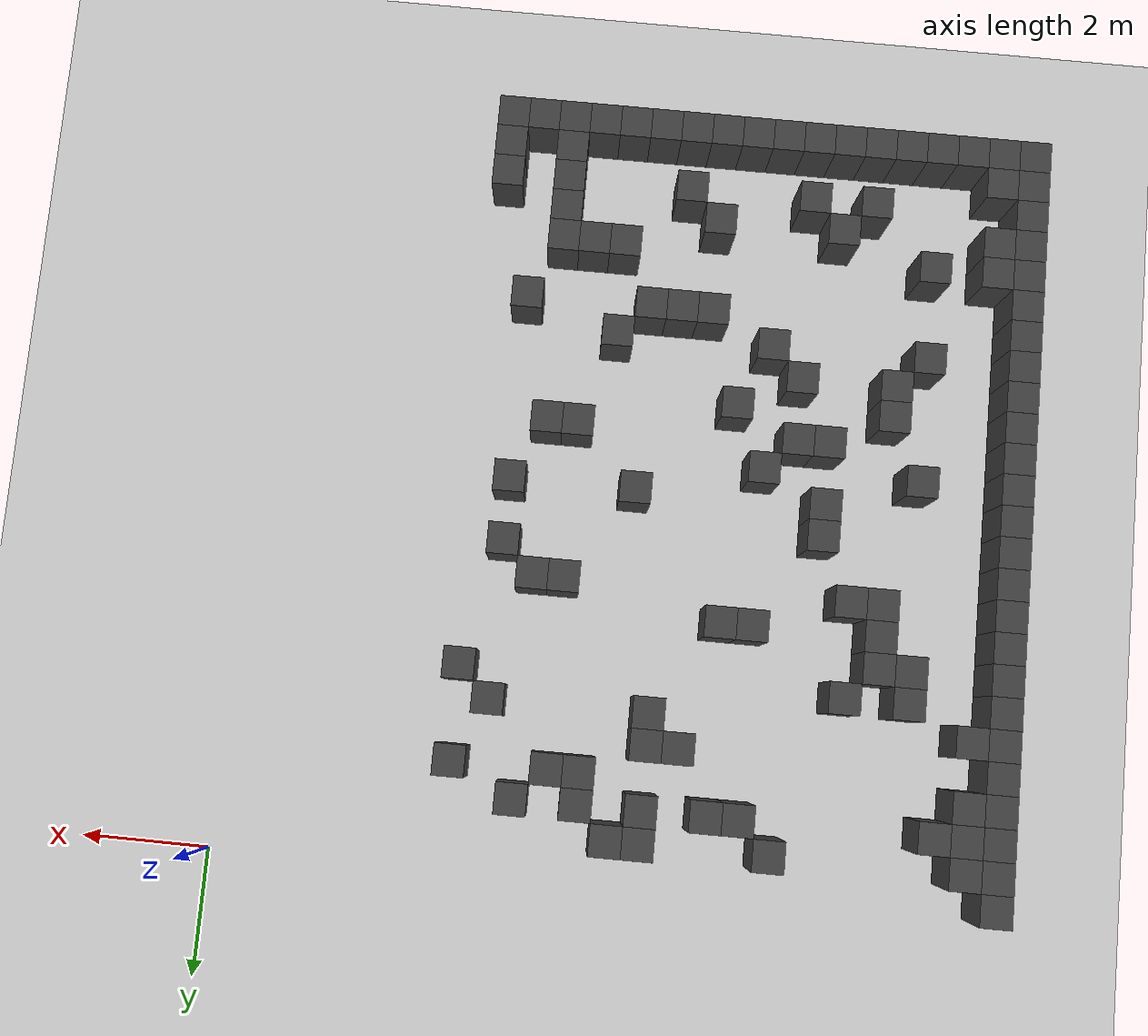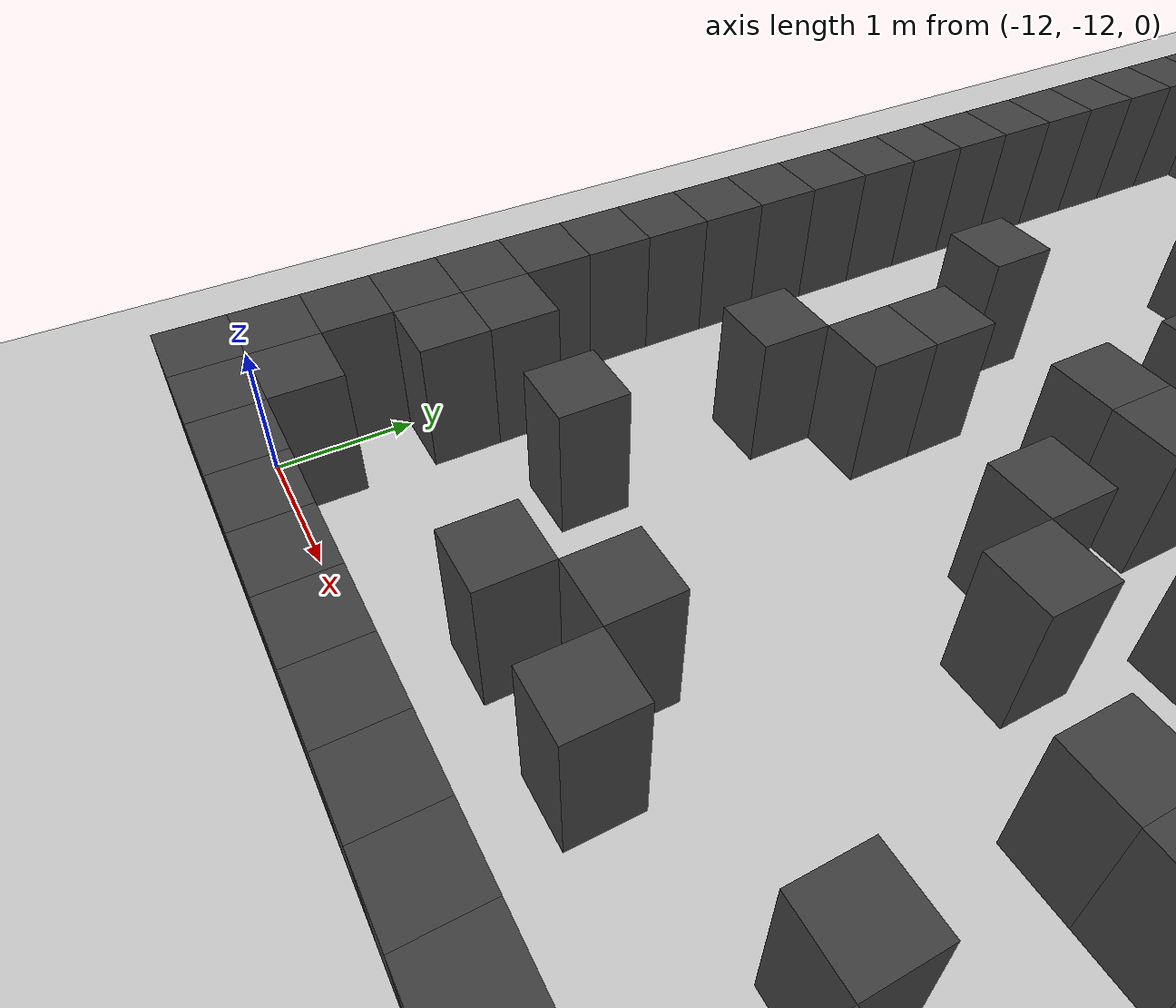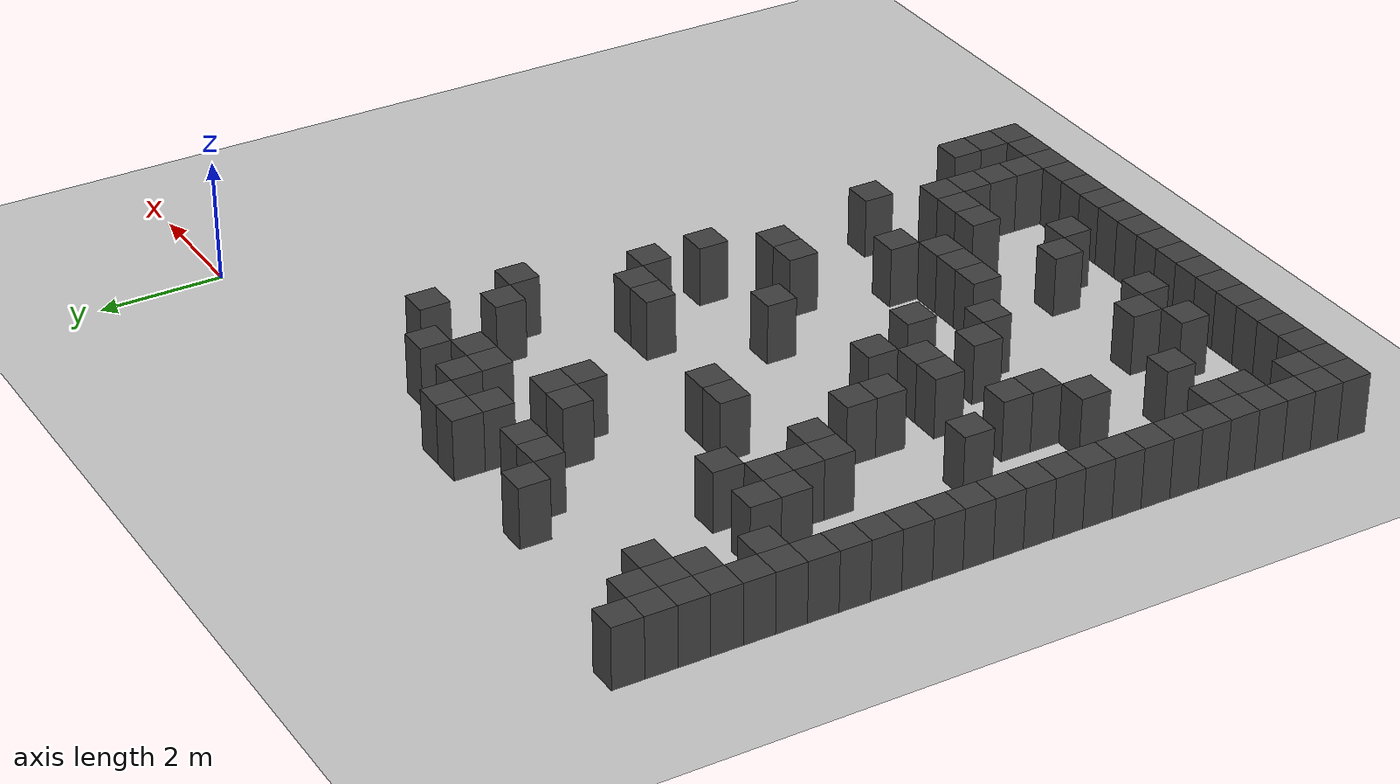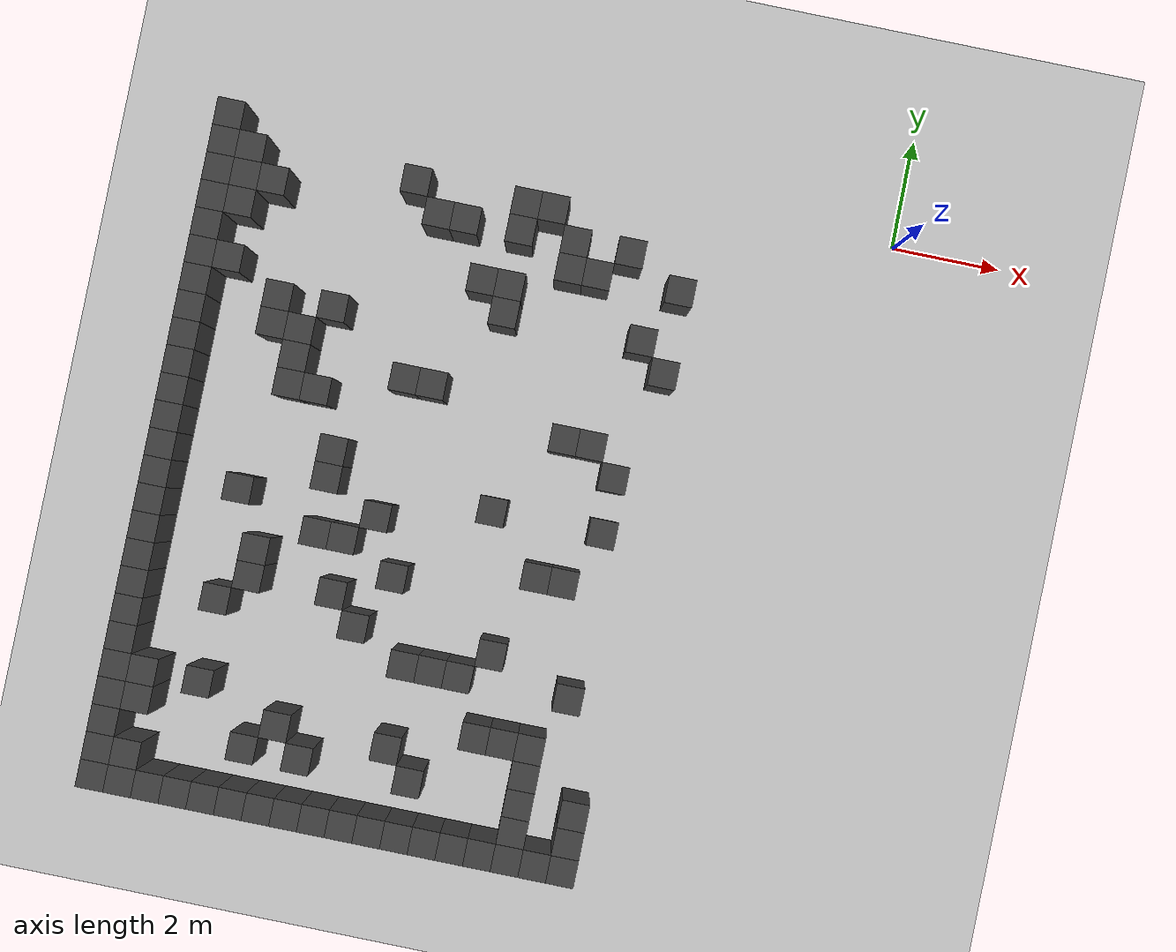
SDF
<sdf version="1.7">
 <world name="map_3200">
  <model name="ground_plane">
   <static>true</static>
   <link name="link">
    <collision name="collision">
     <geometry><plane><normal>0 0 1</normal><size>200 200</size></plane></geometry>
    </collision>
    <visual name="visual">
     <geometry><plane><normal>0 0 1</normal><size>200 200</size></plane></geometry>
     <material><ambient>0.8 0.8 0.8 1</ambient><diffuse>0.8 0.8 0.8 1</diffuse></material>
    </visual>
   </link>
  </model>
  <model name="maze_environment">
   <static>true</static>
   <link name="wall_276">
    <pose>-12.250 -0.250 0.500 0 0 0</pose>
    <collision name="col"><geometry><box><size>0.5 0.5 1.0</size></box></geometry></collision>
    <visual name="vis">
     <geometry><box><size>0.5 0.5 1.0</size></box></geometry>
     <material><ambient>0.15 0.15 0.15 1</ambient><diffuse>0.25 0.25 0.25 1</diffuse></material>
    </visual>
   </link>
   <link name="wall_287">
    <pose>-12.250 -0.750 0.500 0 0 0</pose>
    <collision name="col"><geometry><box><size>0.5 0.5 1.0</size></box></geometry></collision>
    <visual name="vis">
     <geometry><box><size>0.5 0.5 1.0</size></box></geometry>
     <material><ambient>0.15 0.15 0.15 1</ambient><diffuse>0.25 0.25 0.25 1</diffuse></material>
    </visual>
   </link>
   <link name="wall_288">
    <pose>-11.750 -0.750 0.500 0 0 0</pose>
    <collision name="col"><geometry><box><size>0.5 0.5 1.0</size></box></geometry></collision>
    <visual name="vis">
     <geometry><box><size>0.5 0.5 1.0</size></box></geometry>
     <material><ambient>0.15 0.15 0.15 1</ambient><diffuse>0.25 0.25 0.25 1</diffuse></material>
    </visual>
   </link>
   <link name="wall_289">
    <pose>-8.750 -0.750 0.500 0 0 0</pose>
    <collision name="col"><geometry><box><size>0.5 0.5 1.0</size></box></geometry></collision>
    <visual name="vis">
     <geometry><box><size>0.5 0.5 1.0</size></box></geometry>
     <material><ambient>0.15 0.15 0.15 1</ambient><diffuse>0.25 0.25 0.25 1</diffuse></material>
    </visual>
   </link>
   <link name="wall_290">
    <pose>-6.750 -0.750 0.500 0 0 0</pose>
    <collision name="col"><geometry><box><size>0.5 0.5 1.0</size></box></geometry></collision>
    <visual name="vis">
     <geometry><box><size>0.5 0.5 1.0</size></box></geometry>
     <material><ambient>0.15 0.15 0.15 1</ambient><diffuse>0.25 0.25 0.25 1</diffuse></material>
    </visual>
   </link>
   <link name="wall_291">
    <pose>-6.250 -0.750 0.500 0 0 0</pose>
    <collision name="col"><geometry><box><size>0.5 0.5 1.0</size></box></geometry></collision>
    <visual name="vis">
     <geometry><box><size>0.5 0.5 1.0</size></box></geometry>
     <material><ambient>0.15 0.15 0.15 1</ambient><diffuse>0.25 0.25 0.25 1</diffuse></material>
    </visual>
   </link>
   <link name="wall_298">
    <pose>-12.250 -1.250 0.500 0 0 0</pose>
    <collision name="col"><geometry><box><size>0.5 0.5 1.0</size></box></geometry></collision>
    <visual name="vis">
     <geometry><box><size>0.5 0.5 1.0</size></box></geometry>
     <material><ambient>0.15 0.15 0.15 1</ambient><diffuse>0.25 0.25 0.25 1</diffuse></material>
    </visual>
   </link>
   <link name="wall_299">
    <pose>-11.750 -1.250 0.500 0 0 0</pose>
    <collision name="col"><geometry><box><size>0.5 0.5 1.0</size></box></geometry></collision>
    <visual name="vis">
     <geometry><box><size>0.5 0.5 1.0</size></box></geometry>
     <material><ambient>0.15 0.15 0.15 1</ambient><diffuse>0.25 0.25 0.25 1</diffuse></material>
    </visual>
   </link>
   <link name="wall_300">
    <pose>-11.250 -1.250 0.500 0 0 0</pose>
    <collision name="col"><geometry><box><size>0.5 0.5 1.0</size></box></geometry></collision>
    <visual name="vis">
     <geometry><box><size>0.5 0.5 1.0</size></box></geometry>
     <material><ambient>0.15 0.15 0.15 1</ambient><diffuse>0.25 0.25 0.25 1</diffuse></material>
    </visual>
   </link>
   <link name="wall_301">
    <pose>-8.250 -1.250 0.500 0 0 0</pose>
    <collision name="col"><geometry><box><size>0.5 0.5 1.0</size></box></geometry></collision>
    <visual name="vis">
     <geometry><box><size>0.5 0.5 1.0</size></box></geometry>
     <material><ambient>0.15 0.15 0.15 1</ambient><diffuse>0.25 0.25 0.25 1</diffuse></material>
    </visual>
   </link>
   <link name="wall_302">
    <pose>-7.750 -1.250 0.500 0 0 0</pose>
    <collision name="col"><geometry><box><size>0.5 0.5 1.0</size></box></geometry></collision>
    <visual name="vis">
     <geometry><box><size>0.5 0.5 1.0</size></box></geometry>
     <material><ambient>0.15 0.15 0.15 1</ambient><diffuse>0.25 0.25 0.25 1</diffuse></material>
    </visual>
   </link>
   <link name="wall_303">
    <pose>-6.750 -1.250 0.500 0 0 0</pose>
    <collision name="col"><geometry><box><size>0.5 0.5 1.0</size></box></geometry></collision>
    <visual name="vis">
     <geometry><box><size>0.5 0.5 1.0</size></box></geometry>
     <material><ambient>0.15 0.15 0.15 1</ambient><diffuse>0.25 0.25 0.25 1</diffuse></material>
    </visual>
   </link>
   <link name="wall_304">
    <pose>-5.750 -1.250 0.500 0 0 0</pose>
    <collision name="col"><geometry><box><size>0.5 0.5 1.0</size></box></geometry></collision>
    <visual name="vis">
     <geometry><box><size>0.5 0.5 1.0</size></box></geometry>
     <material><ambient>0.15 0.15 0.15 1</ambient><diffuse>0.25 0.25 0.25 1</diffuse></material>
    </visual>
   </link>
   <link name="wall_305">
    <pose>-4.750 -1.250 0.500 0 0 0</pose>
    <collision name="col"><geometry><box><size>0.5 0.5 1.0</size></box></geometry></collision>
    <visual name="vis">
     <geometry><box><size>0.5 0.5 1.0</size></box></geometry>
     <material><ambient>0.15 0.15 0.15 1</ambient><diffuse>0.25 0.25 0.25 1</diffuse></material>
    </visual>
   </link>
   <link name="wall_314">
    <pose>-12.250 -1.750 0.500 0 0 0</pose>
    <collision name="col"><geometry><box><size>0.5 0.5 1.0</size></box></geometry></collision>
    <visual name="vis">
     <geometry><box><size>0.5 0.5 1.0</size></box></geometry>
     <material><ambient>0.15 0.15 0.15 1</ambient><diffuse>0.25 0.25 0.25 1</diffuse></material>
    </visual>
   </link>
   <link name="wall_315">
    <pose>-11.750 -1.750 0.500 0 0 0</pose>
    <collision name="col"><geometry><box><size>0.5 0.5 1.0</size></box></geometry></collision>
    <visual name="vis">
     <geometry><box><size>0.5 0.5 1.0</size></box></geometry>
     <material><ambient>0.15 0.15 0.15 1</ambient><diffuse>0.25 0.25 0.25 1</diffuse></material>
    </visual>
   </link>
   <link name="wall_316">
    <pose>-5.750 -1.750 0.500 0 0 0</pose>
    <collision name="col"><geometry><box><size>0.5 0.5 1.0</size></box></geometry></collision>
    <visual name="vis">
     <geometry><box><size>0.5 0.5 1.0</size></box></geometry>
     <material><ambient>0.15 0.15 0.15 1</ambient><diffuse>0.25 0.25 0.25 1</diffuse></material>
    </visual>
   </link>
   <link name="wall_317">
    <pose>-5.250 -1.750 0.500 0 0 0</pose>
    <collision name="col"><geometry><box><size>0.5 0.5 1.0</size></box></geometry></collision>
    <visual name="vis">
     <geometry><box><size>0.5 0.5 1.0</size></box></geometry>
     <material><ambient>0.15 0.15 0.15 1</ambient><diffuse>0.25 0.25 0.25 1</diffuse></material>
    </visual>
   </link>
   <link name="wall_318">
    <pose>-3.750 -1.750 0.500 0 0 0</pose>
    <collision name="col"><geometry><box><size>0.5 0.5 1.0</size></box></geometry></collision>
    <visual name="vis">
     <geometry><box><size>0.5 0.5 1.0</size></box></geometry>
     <material><ambient>0.15 0.15 0.15 1</ambient><diffuse>0.25 0.25 0.25 1</diffuse></material>
    </visual>
   </link>
   <link name="wall_323">
    <pose>-12.250 -2.250 0.500 0 0 0</pose>
    <collision name="col"><geometry><box><size>0.5 0.5 1.0</size></box></geometry></collision>
    <visual name="vis">
     <geometry><box><size>0.5 0.5 1.0</size></box></geometry>
     <material><ambient>0.15 0.15 0.15 1</ambient><diffuse>0.25 0.25 0.25 1</diffuse></material>
    </visual>
   </link>
   <link name="wall_324">
    <pose>-7.250 -2.250 0.500 0 0 0</pose>
    <collision name="col"><geometry><box><size>0.5 0.5 1.0</size></box></geometry></collision>
    <visual name="vis">
     <geometry><box><size>0.5 0.5 1.0</size></box></geometry>
     <material><ambient>0.15 0.15 0.15 1</ambient><diffuse>0.25 0.25 0.25 1</diffuse></material>
    </visual>
   </link>
   <link name="wall_325">
    <pose>-6.750 -2.250 0.500 0 0 0</pose>
    <collision name="col"><geometry><box><size>0.5 0.5 1.0</size></box></geometry></collision>
    <visual name="vis">
     <geometry><box><size>0.5 0.5 1.0</size></box></geometry>
     <material><ambient>0.15 0.15 0.15 1</ambient><diffuse>0.25 0.25 0.25 1</diffuse></material>
    </visual>
   </link>
   <link name="wall_328">
    <pose>-12.250 -2.750 0.500 0 0 0</pose>
    <collision name="col"><geometry><box><size>0.5 0.5 1.0</size></box></geometry></collision>
    <visual name="vis">
     <geometry><box><size>0.5 0.5 1.0</size></box></geometry>
     <material><ambient>0.15 0.15 0.15 1</ambient><diffuse>0.25 0.25 0.25 1</diffuse></material>
    </visual>
   </link>
   <link name="wall_329">
    <pose>-11.750 -2.750 0.500 0 0 0</pose>
    <collision name="col"><geometry><box><size>0.5 0.5 1.0</size></box></geometry></collision>
    <visual name="vis">
     <geometry><box><size>0.5 0.5 1.0</size></box></geometry>
     <material><ambient>0.15 0.15 0.15 1</ambient><diffuse>0.25 0.25 0.25 1</diffuse></material>
    </visual>
   </link>
   <link name="wall_330">
    <pose>-6.750 -2.750 0.500 0 0 0</pose>
    <collision name="col"><geometry><box><size>0.5 0.5 1.0</size></box></geometry></collision>
    <visual name="vis">
     <geometry><box><size>0.5 0.5 1.0</size></box></geometry>
     <material><ambient>0.15 0.15 0.15 1</ambient><diffuse>0.25 0.25 0.25 1</diffuse></material>
    </visual>
   </link>
   <link name="wall_331">
    <pose>-4.250 -2.750 0.500 0 0 0</pose>
    <collision name="col"><geometry><box><size>0.5 0.5 1.0</size></box></geometry></collision>
    <visual name="vis">
     <geometry><box><size>0.5 0.5 1.0</size></box></geometry>
     <material><ambient>0.15 0.15 0.15 1</ambient><diffuse>0.25 0.25 0.25 1</diffuse></material>
    </visual>
   </link>
   <link name="wall_336">
    <pose>-12.250 -3.250 0.500 0 0 0</pose>
    <collision name="col"><geometry><box><size>0.5 0.5 1.0</size></box></geometry></collision>
    <visual name="vis">
     <geometry><box><size>0.5 0.5 1.0</size></box></geometry>
     <material><ambient>0.15 0.15 0.15 1</ambient><diffuse>0.25 0.25 0.25 1</diffuse></material>
    </visual>
   </link>
   <link name="wall_337">
    <pose>-10.750 -3.250 0.500 0 0 0</pose>
    <collision name="col"><geometry><box><size>0.5 0.5 1.0</size></box></geometry></collision>
    <visual name="vis">
     <geometry><box><size>0.5 0.5 1.0</size></box></geometry>
     <material><ambient>0.15 0.15 0.15 1</ambient><diffuse>0.25 0.25 0.25 1</diffuse></material>
    </visual>
   </link>
   <link name="wall_338">
    <pose>-9.750 -3.250 0.500 0 0 0</pose>
    <collision name="col"><geometry><box><size>0.5 0.5 1.0</size></box></geometry></collision>
    <visual name="vis">
     <geometry><box><size>0.5 0.5 1.0</size></box></geometry>
     <material><ambient>0.15 0.15 0.15 1</ambient><diffuse>0.25 0.25 0.25 1</diffuse></material>
    </visual>
   </link>
   <link name="wall_339">
    <pose>-3.750 -3.250 0.500 0 0 0</pose>
    <collision name="col"><geometry><box><size>0.5 0.5 1.0</size></box></geometry></collision>
    <visual name="vis">
     <geometry><box><size>0.5 0.5 1.0</size></box></geometry>
     <material><ambient>0.15 0.15 0.15 1</ambient><diffuse>0.25 0.25 0.25 1</diffuse></material>
    </visual>
   </link>
   <link name="wall_349">
    <pose>-12.250 -3.750 0.500 0 0 0</pose>
    <collision name="col"><geometry><box><size>0.5 0.5 1.0</size></box></geometry></collision>
    <visual name="vis">
     <geometry><box><size>0.5 0.5 1.0</size></box></geometry>
     <material><ambient>0.15 0.15 0.15 1</ambient><diffuse>0.25 0.25 0.25 1</diffuse></material>
    </visual>
   </link>
   <link name="wall_350">
    <pose>-10.750 -3.750 0.500 0 0 0</pose>
    <collision name="col"><geometry><box><size>0.5 0.5 1.0</size></box></geometry></collision>
    <visual name="vis">
     <geometry><box><size>0.5 0.5 1.0</size></box></geometry>
     <material><ambient>0.15 0.15 0.15 1</ambient><diffuse>0.25 0.25 0.25 1</diffuse></material>
    </visual>
   </link>
   <link name="wall_351">
    <pose>-10.250 -3.750 0.500 0 0 0</pose>
    <collision name="col"><geometry><box><size>0.5 0.5 1.0</size></box></geometry></collision>
    <visual name="vis">
     <geometry><box><size>0.5 0.5 1.0</size></box></geometry>
     <material><ambient>0.15 0.15 0.15 1</ambient><diffuse>0.25 0.25 0.25 1</diffuse></material>
    </visual>
   </link>
   <link name="wall_355">
    <pose>-12.250 -4.250 0.500 0 0 0</pose>
    <collision name="col"><geometry><box><size>0.5 0.5 1.0</size></box></geometry></collision>
    <visual name="vis">
     <geometry><box><size>0.5 0.5 1.0</size></box></geometry>
     <material><ambient>0.15 0.15 0.15 1</ambient><diffuse>0.25 0.25 0.25 1</diffuse></material>
    </visual>
   </link>
   <link name="wall_356">
    <pose>-10.250 -4.250 0.500 0 0 0</pose>
    <collision name="col"><geometry><box><size>0.5 0.5 1.0</size></box></geometry></collision>
    <visual name="vis">
     <geometry><box><size>0.5 0.5 1.0</size></box></geometry>
     <material><ambient>0.15 0.15 0.15 1</ambient><diffuse>0.25 0.25 0.25 1</diffuse></material>
    </visual>
   </link>
   <link name="wall_357">
    <pose>-8.250 -4.250 0.500 0 0 0</pose>
    <collision name="col"><geometry><box><size>0.5 0.5 1.0</size></box></geometry></collision>
    <visual name="vis">
     <geometry><box><size>0.5 0.5 1.0</size></box></geometry>
     <material><ambient>0.15 0.15 0.15 1</ambient><diffuse>0.25 0.25 0.25 1</diffuse></material>
    </visual>
   </link>
   <link name="wall_358">
    <pose>-7.750 -4.250 0.500 0 0 0</pose>
    <collision name="col"><geometry><box><size>0.5 0.5 1.0</size></box></geometry></collision>
    <visual name="vis">
     <geometry><box><size>0.5 0.5 1.0</size></box></geometry>
     <material><ambient>0.15 0.15 0.15 1</ambient><diffuse>0.25 0.25 0.25 1</diffuse></material>
    </visual>
   </link>
   <link name="wall_367">
    <pose>-12.250 -4.750 0.500 0 0 0</pose>
    <collision name="col"><geometry><box><size>0.5 0.5 1.0</size></box></geometry></collision>
    <visual name="vis">
     <geometry><box><size>0.5 0.5 1.0</size></box></geometry>
     <material><ambient>0.15 0.15 0.15 1</ambient><diffuse>0.25 0.25 0.25 1</diffuse></material>
    </visual>
   </link>
   <link name="wall_368">
    <pose>-10.250 -4.750 0.500 0 0 0</pose>
    <collision name="col"><geometry><box><size>0.5 0.5 1.0</size></box></geometry></collision>
    <visual name="vis">
     <geometry><box><size>0.5 0.5 1.0</size></box></geometry>
     <material><ambient>0.15 0.15 0.15 1</ambient><diffuse>0.25 0.25 0.25 1</diffuse></material>
    </visual>
   </link>
   <link name="wall_369">
    <pose>-9.750 -4.750 0.500 0 0 0</pose>
    <collision name="col"><geometry><box><size>0.5 0.5 1.0</size></box></geometry></collision>
    <visual name="vis">
     <geometry><box><size>0.5 0.5 1.0</size></box></geometry>
     <material><ambient>0.15 0.15 0.15 1</ambient><diffuse>0.25 0.25 0.25 1</diffuse></material>
    </visual>
   </link>
   <link name="wall_370">
    <pose>-5.250 -4.750 0.500 0 0 0</pose>
    <collision name="col"><geometry><box><size>0.5 0.5 1.0</size></box></geometry></collision>
    <visual name="vis">
     <geometry><box><size>0.5 0.5 1.0</size></box></geometry>
     <material><ambient>0.15 0.15 0.15 1</ambient><diffuse>0.25 0.25 0.25 1</diffuse></material>
    </visual>
   </link>
   <link name="wall_371">
    <pose>-4.750 -4.750 0.500 0 0 0</pose>
    <collision name="col"><geometry><box><size>0.5 0.5 1.0</size></box></geometry></collision>
    <visual name="vis">
     <geometry><box><size>0.5 0.5 1.0</size></box></geometry>
     <material><ambient>0.15 0.15 0.15 1</ambient><diffuse>0.25 0.25 0.25 1</diffuse></material>
    </visual>
   </link>
   <link name="wall_376">
    <pose>-12.250 -5.250 0.500 0 0 0</pose>
    <collision name="col"><geometry><box><size>0.5 0.5 1.0</size></box></geometry></collision>
    <visual name="vis">
     <geometry><box><size>0.5 0.5 1.0</size></box></geometry>
     <material><ambient>0.15 0.15 0.15 1</ambient><diffuse>0.25 0.25 0.25 1</diffuse></material>
    </visual>
   </link>
   <link name="wall_377">
    <pose>-4.250 -5.250 0.500 0 0 0</pose>
    <collision name="col"><geometry><box><size>0.5 0.5 1.0</size></box></geometry></collision>
    <visual name="vis">
     <geometry><box><size>0.5 0.5 1.0</size></box></geometry>
     <material><ambient>0.15 0.15 0.15 1</ambient><diffuse>0.25 0.25 0.25 1</diffuse></material>
    </visual>
   </link>
   <link name="wall_385">
    <pose>-12.250 -5.750 0.500 0 0 0</pose>
    <collision name="col"><geometry><box><size>0.5 0.5 1.0</size></box></geometry></collision>
    <visual name="vis">
     <geometry><box><size>0.5 0.5 1.0</size></box></geometry>
     <material><ambient>0.15 0.15 0.15 1</ambient><diffuse>0.25 0.25 0.25 1</diffuse></material>
    </visual>
   </link>
   <link name="wall_386">
    <pose>-9.250 -5.750 0.500 0 0 0</pose>
    <collision name="col"><geometry><box><size>0.5 0.5 1.0</size></box></geometry></collision>
    <visual name="vis">
     <geometry><box><size>0.5 0.5 1.0</size></box></geometry>
     <material><ambient>0.15 0.15 0.15 1</ambient><diffuse>0.25 0.25 0.25 1</diffuse></material>
    </visual>
   </link>
   <link name="wall_393">
    <pose>-12.250 -6.250 0.500 0 0 0</pose>
    <collision name="col"><geometry><box><size>0.5 0.5 1.0</size></box></geometry></collision>
    <visual name="vis">
     <geometry><box><size>0.5 0.5 1.0</size></box></geometry>
     <material><ambient>0.15 0.15 0.15 1</ambient><diffuse>0.25 0.25 0.25 1</diffuse></material>
    </visual>
   </link>
   <link name="wall_394">
    <pose>-9.250 -6.250 0.500 0 0 0</pose>
    <collision name="col"><geometry><box><size>0.5 0.5 1.0</size></box></geometry></collision>
    <visual name="vis">
     <geometry><box><size>0.5 0.5 1.0</size></box></geometry>
     <material><ambient>0.15 0.15 0.15 1</ambient><diffuse>0.25 0.25 0.25 1</diffuse></material>
    </visual>
   </link>
   <link name="wall_395">
    <pose>-6.250 -6.250 0.500 0 0 0</pose>
    <collision name="col"><geometry><box><size>0.5 0.5 1.0</size></box></geometry></collision>
    <visual name="vis">
     <geometry><box><size>0.5 0.5 1.0</size></box></geometry>
     <material><ambient>0.15 0.15 0.15 1</ambient><diffuse>0.25 0.25 0.25 1</diffuse></material>
    </visual>
   </link>
   <link name="wall_396">
    <pose>-4.250 -6.250 0.500 0 0 0</pose>
    <collision name="col"><geometry><box><size>0.5 0.5 1.0</size></box></geometry></collision>
    <visual name="vis">
     <geometry><box><size>0.5 0.5 1.0</size></box></geometry>
     <material><ambient>0.15 0.15 0.15 1</ambient><diffuse>0.25 0.25 0.25 1</diffuse></material>
    </visual>
   </link>
   <link name="wall_404">
    <pose>-12.250 -6.750 0.500 0 0 0</pose>
    <collision name="col"><geometry><box><size>0.5 0.5 1.0</size></box></geometry></collision>
    <visual name="vis">
     <geometry><box><size>0.5 0.5 1.0</size></box></geometry>
     <material><ambient>0.15 0.15 0.15 1</ambient><diffuse>0.25 0.25 0.25 1</diffuse></material>
    </visual>
   </link>
   <link name="wall_405">
    <pose>-10.750 -6.750 0.500 0 0 0</pose>
    <collision name="col"><geometry><box><size>0.5 0.5 1.0</size></box></geometry></collision>
    <visual name="vis">
     <geometry><box><size>0.5 0.5 1.0</size></box></geometry>
     <material><ambient>0.15 0.15 0.15 1</ambient><diffuse>0.25 0.25 0.25 1</diffuse></material>
    </visual>
   </link>
   <link name="wall_406">
    <pose>-8.250 -6.750 0.500 0 0 0</pose>
    <collision name="col"><geometry><box><size>0.5 0.5 1.0</size></box></geometry></collision>
    <visual name="vis">
     <geometry><box><size>0.5 0.5 1.0</size></box></geometry>
     <material><ambient>0.15 0.15 0.15 1</ambient><diffuse>0.25 0.25 0.25 1</diffuse></material>
    </visual>
   </link>
   <link name="wall_417">
    <pose>-12.250 -7.250 0.500 0 0 0</pose>
    <collision name="col"><geometry><box><size>0.5 0.5 1.0</size></box></geometry></collision>
    <visual name="vis">
     <geometry><box><size>0.5 0.5 1.0</size></box></geometry>
     <material><ambient>0.15 0.15 0.15 1</ambient><diffuse>0.25 0.25 0.25 1</diffuse></material>
    </visual>
   </link>
   <link name="wall_418">
    <pose>-9.250 -7.250 0.500 0 0 0</pose>
    <collision name="col"><geometry><box><size>0.5 0.5 1.0</size></box></geometry></collision>
    <visual name="vis">
     <geometry><box><size>0.5 0.5 1.0</size></box></geometry>
     <material><ambient>0.15 0.15 0.15 1</ambient><diffuse>0.25 0.25 0.25 1</diffuse></material>
    </visual>
   </link>
   <link name="wall_419">
    <pose>-8.750 -7.250 0.500 0 0 0</pose>
    <collision name="col"><geometry><box><size>0.5 0.5 1.0</size></box></geometry></collision>
    <visual name="vis">
     <geometry><box><size>0.5 0.5 1.0</size></box></geometry>
     <material><ambient>0.15 0.15 0.15 1</ambient><diffuse>0.25 0.25 0.25 1</diffuse></material>
    </visual>
   </link>
   <link name="wall_420">
    <pose>-5.250 -7.250 0.500 0 0 0</pose>
    <collision name="col"><geometry><box><size>0.5 0.5 1.0</size></box></geometry></collision>
    <visual name="vis">
     <geometry><box><size>0.5 0.5 1.0</size></box></geometry>
     <material><ambient>0.15 0.15 0.15 1</ambient><diffuse>0.25 0.25 0.25 1</diffuse></material>
    </visual>
   </link>
   <link name="wall_421">
    <pose>-4.750 -7.250 0.500 0 0 0</pose>
    <collision name="col"><geometry><box><size>0.5 0.5 1.0</size></box></geometry></collision>
    <visual name="vis">
     <geometry><box><size>0.5 0.5 1.0</size></box></geometry>
     <material><ambient>0.15 0.15 0.15 1</ambient><diffuse>0.25 0.25 0.25 1</diffuse></material>
    </visual>
   </link>
   <link name="wall_432">
    <pose>-12.250 -7.750 0.500 0 0 0</pose>
    <collision name="col"><geometry><box><size>0.5 0.5 1.0</size></box></geometry></collision>
    <visual name="vis">
     <geometry><box><size>0.5 0.5 1.0</size></box></geometry>
     <material><ambient>0.15 0.15 0.15 1</ambient><diffuse>0.25 0.25 0.25 1</diffuse></material>
    </visual>
   </link>
   <link name="wall_433">
    <pose>-10.250 -7.750 0.500 0 0 0</pose>
    <collision name="col"><geometry><box><size>0.5 0.5 1.0</size></box></geometry></collision>
    <visual name="vis">
     <geometry><box><size>0.5 0.5 1.0</size></box></geometry>
     <material><ambient>0.15 0.15 0.15 1</ambient><diffuse>0.25 0.25 0.25 1</diffuse></material>
    </visual>
   </link>
   <link name="wall_434">
    <pose>-7.750 -7.750 0.500 0 0 0</pose>
    <collision name="col"><geometry><box><size>0.5 0.5 1.0</size></box></geometry></collision>
    <visual name="vis">
     <geometry><box><size>0.5 0.5 1.0</size></box></geometry>
     <material><ambient>0.15 0.15 0.15 1</ambient><diffuse>0.25 0.25 0.25 1</diffuse></material>
    </visual>
   </link>
   <link name="wall_438">
    <pose>-12.250 -8.250 0.500 0 0 0</pose>
    <collision name="col"><geometry><box><size>0.5 0.5 1.0</size></box></geometry></collision>
    <visual name="vis">
     <geometry><box><size>0.5 0.5 1.0</size></box></geometry>
     <material><ambient>0.15 0.15 0.15 1</ambient><diffuse>0.25 0.25 0.25 1</diffuse></material>
    </visual>
   </link>
   <link name="wall_439">
    <pose>-10.250 -8.250 0.500 0 0 0</pose>
    <collision name="col"><geometry><box><size>0.5 0.5 1.0</size></box></geometry></collision>
    <visual name="vis">
     <geometry><box><size>0.5 0.5 1.0</size></box></geometry>
     <material><ambient>0.15 0.15 0.15 1</ambient><diffuse>0.25 0.25 0.25 1</diffuse></material>
    </visual>
   </link>
   <link name="wall_440">
    <pose>-8.750 -8.250 0.500 0 0 0</pose>
    <collision name="col"><geometry><box><size>0.5 0.5 1.0</size></box></geometry></collision>
    <visual name="vis">
     <geometry><box><size>0.5 0.5 1.0</size></box></geometry>
     <material><ambient>0.15 0.15 0.15 1</ambient><diffuse>0.25 0.25 0.25 1</diffuse></material>
    </visual>
   </link>
   <link name="wall_447">
    <pose>-12.250 -8.750 0.500 0 0 0</pose>
    <collision name="col"><geometry><box><size>0.5 0.5 1.0</size></box></geometry></collision>
    <visual name="vis">
     <geometry><box><size>0.5 0.5 1.0</size></box></geometry>
     <material><ambient>0.15 0.15 0.15 1</ambient><diffuse>0.25 0.25 0.25 1</diffuse></material>
    </visual>
   </link>
   <link name="wall_448">
    <pose>-10.750 -8.750 0.500 0 0 0</pose>
    <collision name="col"><geometry><box><size>0.5 0.5 1.0</size></box></geometry></collision>
    <visual name="vis">
     <geometry><box><size>0.5 0.5 1.0</size></box></geometry>
     <material><ambient>0.15 0.15 0.15 1</ambient><diffuse>0.25 0.25 0.25 1</diffuse></material>
    </visual>
   </link>
   <link name="wall_449">
    <pose>-8.250 -8.750 0.500 0 0 0</pose>
    <collision name="col"><geometry><box><size>0.5 0.5 1.0</size></box></geometry></collision>
    <visual name="vis">
     <geometry><box><size>0.5 0.5 1.0</size></box></geometry>
     <material><ambient>0.15 0.15 0.15 1</ambient><diffuse>0.25 0.25 0.25 1</diffuse></material>
    </visual>
   </link>
   <link name="wall_450">
    <pose>-5.750 -8.750 0.500 0 0 0</pose>
    <collision name="col"><geometry><box><size>0.5 0.5 1.0</size></box></geometry></collision>
    <visual name="vis">
     <geometry><box><size>0.5 0.5 1.0</size></box></geometry>
     <material><ambient>0.15 0.15 0.15 1</ambient><diffuse>0.25 0.25 0.25 1</diffuse></material>
    </visual>
   </link>
   <link name="wall_454">
    <pose>-12.250 -9.250 0.500 0 0 0</pose>
    <collision name="col"><geometry><box><size>0.5 0.5 1.0</size></box></geometry></collision>
    <visual name="vis">
     <geometry><box><size>0.5 0.5 1.0</size></box></geometry>
     <material><ambient>0.15 0.15 0.15 1</ambient><diffuse>0.25 0.25 0.25 1</diffuse></material>
    </visual>
   </link>
   <link name="wall_455">
    <pose>-7.250 -9.250 0.500 0 0 0</pose>
    <collision name="col"><geometry><box><size>0.5 0.5 1.0</size></box></geometry></collision>
    <visual name="vis">
     <geometry><box><size>0.5 0.5 1.0</size></box></geometry>
     <material><ambient>0.15 0.15 0.15 1</ambient><diffuse>0.25 0.25 0.25 1</diffuse></material>
    </visual>
   </link>
   <link name="wall_456">
    <pose>-6.750 -9.250 0.500 0 0 0</pose>
    <collision name="col"><geometry><box><size>0.5 0.5 1.0</size></box></geometry></collision>
    <visual name="vis">
     <geometry><box><size>0.5 0.5 1.0</size></box></geometry>
     <material><ambient>0.15 0.15 0.15 1</ambient><diffuse>0.25 0.25 0.25 1</diffuse></material>
    </visual>
   </link>
   <link name="wall_457">
    <pose>-6.250 -9.250 0.500 0 0 0</pose>
    <collision name="col"><geometry><box><size>0.5 0.5 1.0</size></box></geometry></collision>
    <visual name="vis">
     <geometry><box><size>0.5 0.5 1.0</size></box></geometry>
     <material><ambient>0.15 0.15 0.15 1</ambient><diffuse>0.25 0.25 0.25 1</diffuse></material>
    </visual>
   </link>
   <link name="wall_458">
    <pose>-4.250 -9.250 0.500 0 0 0</pose>
    <collision name="col"><geometry><box><size>0.5 0.5 1.0</size></box></geometry></collision>
    <visual name="vis">
     <geometry><box><size>0.5 0.5 1.0</size></box></geometry>
     <material><ambient>0.15 0.15 0.15 1</ambient><diffuse>0.25 0.25 0.25 1</diffuse></material>
    </visual>
   </link>
   <link name="wall_463">
    <pose>-12.250 -9.750 0.500 0 0 0</pose>
    <collision name="col"><geometry><box><size>0.5 0.5 1.0</size></box></geometry></collision>
    <visual name="vis">
     <geometry><box><size>0.5 0.5 1.0</size></box></geometry>
     <material><ambient>0.15 0.15 0.15 1</ambient><diffuse>0.25 0.25 0.25 1</diffuse></material>
    </visual>
   </link>
   <link name="wall_471">
    <pose>-12.250 -10.250 0.500 0 0 0</pose>
    <collision name="col"><geometry><box><size>0.5 0.5 1.0</size></box></geometry></collision>
    <visual name="vis">
     <geometry><box><size>0.5 0.5 1.0</size></box></geometry>
     <material><ambient>0.15 0.15 0.15 1</ambient><diffuse>0.25 0.25 0.25 1</diffuse></material>
    </visual>
   </link>
   <link name="wall_472">
    <pose>-11.750 -10.250 0.500 0 0 0</pose>
    <collision name="col"><geometry><box><size>0.5 0.5 1.0</size></box></geometry></collision>
    <visual name="vis">
     <geometry><box><size>0.5 0.5 1.0</size></box></geometry>
     <material><ambient>0.15 0.15 0.15 1</ambient><diffuse>0.25 0.25 0.25 1</diffuse></material>
    </visual>
   </link>
   <link name="wall_473">
    <pose>-10.750 -10.250 0.500 0 0 0</pose>
    <collision name="col"><geometry><box><size>0.5 0.5 1.0</size></box></geometry></collision>
    <visual name="vis">
     <geometry><box><size>0.5 0.5 1.0</size></box></geometry>
     <material><ambient>0.15 0.15 0.15 1</ambient><diffuse>0.25 0.25 0.25 1</diffuse></material>
    </visual>
   </link>
   <link name="wall_474">
    <pose>-5.750 -10.250 0.500 0 0 0</pose>
    <collision name="col"><geometry><box><size>0.5 0.5 1.0</size></box></geometry></collision>
    <visual name="vis">
     <geometry><box><size>0.5 0.5 1.0</size></box></geometry>
     <material><ambient>0.15 0.15 0.15 1</ambient><diffuse>0.25 0.25 0.25 1</diffuse></material>
    </visual>
   </link>
   <link name="wall_475">
    <pose>-5.250 -10.250 0.500 0 0 0</pose>
    <collision name="col"><geometry><box><size>0.5 0.5 1.0</size></box></geometry></collision>
    <visual name="vis">
     <geometry><box><size>0.5 0.5 1.0</size></box></geometry>
     <material><ambient>0.15 0.15 0.15 1</ambient><diffuse>0.25 0.25 0.25 1</diffuse></material>
    </visual>
   </link>
   <link name="wall_476">
    <pose>-4.750 -10.250 0.500 0 0 0</pose>
    <collision name="col"><geometry><box><size>0.5 0.5 1.0</size></box></geometry></collision>
    <visual name="vis">
     <geometry><box><size>0.5 0.5 1.0</size></box></geometry>
     <material><ambient>0.15 0.15 0.15 1</ambient><diffuse>0.25 0.25 0.25 1</diffuse></material>
    </visual>
   </link>
   <link name="wall_482">
    <pose>-12.250 -10.750 0.500 0 0 0</pose>
    <collision name="col"><geometry><box><size>0.5 0.5 1.0</size></box></geometry></collision>
    <visual name="vis">
     <geometry><box><size>0.5 0.5 1.0</size></box></geometry>
     <material><ambient>0.15 0.15 0.15 1</ambient><diffuse>0.25 0.25 0.25 1</diffuse></material>
    </visual>
   </link>
   <link name="wall_483">
    <pose>-11.750 -10.750 0.500 0 0 0</pose>
    <collision name="col"><geometry><box><size>0.5 0.5 1.0</size></box></geometry></collision>
    <visual name="vis">
     <geometry><box><size>0.5 0.5 1.0</size></box></geometry>
     <material><ambient>0.15 0.15 0.15 1</ambient><diffuse>0.25 0.25 0.25 1</diffuse></material>
    </visual>
   </link>
   <link name="wall_484">
    <pose>-9.250 -10.750 0.500 0 0 0</pose>
    <collision name="col"><geometry><box><size>0.5 0.5 1.0</size></box></geometry></collision>
    <visual name="vis">
     <geometry><box><size>0.5 0.5 1.0</size></box></geometry>
     <material><ambient>0.15 0.15 0.15 1</ambient><diffuse>0.25 0.25 0.25 1</diffuse></material>
    </visual>
   </link>
   <link name="wall_485">
    <pose>-7.250 -10.750 0.500 0 0 0</pose>
    <collision name="col"><geometry><box><size>0.5 0.5 1.0</size></box></geometry></collision>
    <visual name="vis">
     <geometry><box><size>0.5 0.5 1.0</size></box></geometry>
     <material><ambient>0.15 0.15 0.15 1</ambient><diffuse>0.25 0.25 0.25 1</diffuse></material>
    </visual>
   </link>
   <link name="wall_486">
    <pose>-4.750 -10.750 0.500 0 0 0</pose>
    <collision name="col"><geometry><box><size>0.5 0.5 1.0</size></box></geometry></collision>
    <visual name="vis">
     <geometry><box><size>0.5 0.5 1.0</size></box></geometry>
     <material><ambient>0.15 0.15 0.15 1</ambient><diffuse>0.25 0.25 0.25 1</diffuse></material>
    </visual>
   </link>
   <link name="wall_496">
    <pose>-12.250 -11.250 0.500 0 0 0</pose>
    <collision name="col"><geometry><box><size>0.5 0.5 1.0</size></box></geometry></collision>
    <visual name="vis">
     <geometry><box><size>0.5 0.5 1.0</size></box></geometry>
     <material><ambient>0.15 0.15 0.15 1</ambient><diffuse>0.25 0.25 0.25 1</diffuse></material>
    </visual>
   </link>
   <link name="wall_497">
    <pose>-9.750 -11.250 0.500 0 0 0</pose>
    <collision name="col"><geometry><box><size>0.5 0.5 1.0</size></box></geometry></collision>
    <visual name="vis">
     <geometry><box><size>0.5 0.5 1.0</size></box></geometry>
     <material><ambient>0.15 0.15 0.15 1</ambient><diffuse>0.25 0.25 0.25 1</diffuse></material>
    </visual>
   </link>
   <link name="wall_498">
    <pose>-8.750 -11.250 0.500 0 0 0</pose>
    <collision name="col"><geometry><box><size>0.5 0.5 1.0</size></box></geometry></collision>
    <visual name="vis">
     <geometry><box><size>0.5 0.5 1.0</size></box></geometry>
     <material><ambient>0.15 0.15 0.15 1</ambient><diffuse>0.25 0.25 0.25 1</diffuse></material>
    </visual>
   </link>
   <link name="wall_499">
    <pose>-6.750 -11.250 0.500 0 0 0</pose>
    <collision name="col"><geometry><box><size>0.5 0.5 1.0</size></box></geometry></collision>
    <visual name="vis">
     <geometry><box><size>0.5 0.5 1.0</size></box></geometry>
     <material><ambient>0.15 0.15 0.15 1</ambient><diffuse>0.25 0.25 0.25 1</diffuse></material>
    </visual>
   </link>
   <link name="wall_500">
    <pose>-4.750 -11.250 0.500 0 0 0</pose>
    <collision name="col"><geometry><box><size>0.5 0.5 1.0</size></box></geometry></collision>
    <visual name="vis">
     <geometry><box><size>0.5 0.5 1.0</size></box></geometry>
     <material><ambient>0.15 0.15 0.15 1</ambient><diffuse>0.25 0.25 0.25 1</diffuse></material>
    </visual>
   </link>
   <link name="wall_501">
    <pose>-3.750 -11.250 0.500 0 0 0</pose>
    <collision name="col"><geometry><box><size>0.5 0.5 1.0</size></box></geometry></collision>
    <visual name="vis">
     <geometry><box><size>0.5 0.5 1.0</size></box></geometry>
     <material><ambient>0.15 0.15 0.15 1</ambient><diffuse>0.25 0.25 0.25 1</diffuse></material>
    </visual>
   </link>
   <link name="wall_506">
    <pose>-12.250 -11.750 0.500 0 0 0</pose>
    <collision name="col"><geometry><box><size>0.5 0.5 1.0</size></box></geometry></collision>
    <visual name="vis">
     <geometry><box><size>0.5 0.5 1.0</size></box></geometry>
     <material><ambient>0.15 0.15 0.15 1</ambient><diffuse>0.25 0.25 0.25 1</diffuse></material>
    </visual>
   </link>
   <link name="wall_507">
    <pose>-11.750 -11.750 0.500 0 0 0</pose>
    <collision name="col"><geometry><box><size>0.5 0.5 1.0</size></box></geometry></collision>
    <visual name="vis">
     <geometry><box><size>0.5 0.5 1.0</size></box></geometry>
     <material><ambient>0.15 0.15 0.15 1</ambient><diffuse>0.25 0.25 0.25 1</diffuse></material>
    </visual>
   </link>
   <link name="wall_508">
    <pose>-4.750 -11.750 0.500 0 0 0</pose>
    <collision name="col"><geometry><box><size>0.5 0.5 1.0</size></box></geometry></collision>
    <visual name="vis">
     <geometry><box><size>0.5 0.5 1.0</size></box></geometry>
     <material><ambient>0.15 0.15 0.15 1</ambient><diffuse>0.25 0.25 0.25 1</diffuse></material>
    </visual>
   </link>
   <link name="wall_509">
    <pose>-3.750 -11.750 0.500 0 0 0</pose>
    <collision name="col"><geometry><box><size>0.5 0.5 1.0</size></box></geometry></collision>
    <visual name="vis">
     <geometry><box><size>0.5 0.5 1.0</size></box></geometry>
     <material><ambient>0.15 0.15 0.15 1</ambient><diffuse>0.25 0.25 0.25 1</diffuse></material>
    </visual>
   </link>
   <link name="wall_516">
    <pose>-12.250 -12.250 0.500 0 0 0</pose>
    <collision name="col"><geometry><box><size>0.5 0.5 1.0</size></box></geometry></collision>
    <visual name="vis">
     <geometry><box><size>0.5 0.5 1.0</size></box></geometry>
     <material><ambient>0.15 0.15 0.15 1</ambient><diffuse>0.25 0.25 0.25 1</diffuse></material>
    </visual>
   </link>
   <link name="wall_517">
    <pose>-11.750 -12.250 0.500 0 0 0</pose>
    <collision name="col"><geometry><box><size>0.5 0.5 1.0</size></box></geometry></collision>
    <visual name="vis">
     <geometry><box><size>0.5 0.5 1.0</size></box></geometry>
     <material><ambient>0.15 0.15 0.15 1</ambient><diffuse>0.25 0.25 0.25 1</diffuse></material>
    </visual>
   </link>
   <link name="wall_518">
    <pose>-11.250 -12.250 0.500 0 0 0</pose>
    <collision name="col"><geometry><box><size>0.5 0.5 1.0</size></box></geometry></collision>
    <visual name="vis">
     <geometry><box><size>0.5 0.5 1.0</size></box></geometry>
     <material><ambient>0.15 0.15 0.15 1</ambient><diffuse>0.25 0.25 0.25 1</diffuse></material>
    </visual>
   </link>
   <link name="wall_519">
    <pose>-10.750 -12.250 0.500 0 0 0</pose>
    <collision name="col"><geometry><box><size>0.5 0.5 1.0</size></box></geometry></collision>
    <visual name="vis">
     <geometry><box><size>0.5 0.5 1.0</size></box></geometry>
     <material><ambient>0.15 0.15 0.15 1</ambient><diffuse>0.25 0.25 0.25 1</diffuse></material>
    </visual>
   </link>
   <link name="wall_520">
    <pose>-10.250 -12.250 0.500 0 0 0</pose>
    <collision name="col"><geometry><box><size>0.5 0.5 1.0</size></box></geometry></collision>
    <visual name="vis">
     <geometry><box><size>0.5 0.5 1.0</size></box></geometry>
     <material><ambient>0.15 0.15 0.15 1</ambient><diffuse>0.25 0.25 0.25 1</diffuse></material>
    </visual>
   </link>
   <link name="wall_521">
    <pose>-9.750 -12.250 0.500 0 0 0</pose>
    <collision name="col"><geometry><box><size>0.5 0.5 1.0</size></box></geometry></collision>
    <visual name="vis">
     <geometry><box><size>0.5 0.5 1.0</size></box></geometry>
     <material><ambient>0.15 0.15 0.15 1</ambient><diffuse>0.25 0.25 0.25 1</diffuse></material>
    </visual>
   </link>
   <link name="wall_522">
    <pose>-9.250 -12.250 0.500 0 0 0</pose>
    <collision name="col"><geometry><box><size>0.5 0.5 1.0</size></box></geometry></collision>
    <visual name="vis">
     <geometry><box><size>0.5 0.5 1.0</size></box></geometry>
     <material><ambient>0.15 0.15 0.15 1</ambient><diffuse>0.25 0.25 0.25 1</diffuse></material>
    </visual>
   </link>
   <link name="wall_523">
    <pose>-8.750 -12.250 0.500 0 0 0</pose>
    <collision name="col"><geometry><box><size>0.5 0.5 1.0</size></box></geometry></collision>
    <visual name="vis">
     <geometry><box><size>0.5 0.5 1.0</size></box></geometry>
     <material><ambient>0.15 0.15 0.15 1</ambient><diffuse>0.25 0.25 0.25 1</diffuse></material>
    </visual>
   </link>
   <link name="wall_524">
    <pose>-8.250 -12.250 0.500 0 0 0</pose>
    <collision name="col"><geometry><box><size>0.5 0.5 1.0</size></box></geometry></collision>
    <visual name="vis">
     <geometry><box><size>0.5 0.5 1.0</size></box></geometry>
     <material><ambient>0.15 0.15 0.15 1</ambient><diffuse>0.25 0.25 0.25 1</diffuse></material>
    </visual>
   </link>
   <link name="wall_525">
    <pose>-7.750 -12.250 0.500 0 0 0</pose>
    <collision name="col"><geometry><box><size>0.5 0.5 1.0</size></box></geometry></collision>
    <visual name="vis">
     <geometry><box><size>0.5 0.5 1.0</size></box></geometry>
     <material><ambient>0.15 0.15 0.15 1</ambient><diffuse>0.25 0.25 0.25 1</diffuse></material>
    </visual>
   </link>
   <link name="wall_526">
    <pose>-7.250 -12.250 0.500 0 0 0</pose>
    <collision name="col"><geometry><box><size>0.5 0.5 1.0</size></box></geometry></collision>
    <visual name="vis">
     <geometry><box><size>0.5 0.5 1.0</size></box></geometry>
     <material><ambient>0.15 0.15 0.15 1</ambient><diffuse>0.25 0.25 0.25 1</diffuse></material>
    </visual>
   </link>
   <link name="wall_527">
    <pose>-6.750 -12.250 0.500 0 0 0</pose>
    <collision name="col"><geometry><box><size>0.5 0.5 1.0</size></box></geometry></collision>
    <visual name="vis">
     <geometry><box><size>0.5 0.5 1.0</size></box></geometry>
     <material><ambient>0.15 0.15 0.15 1</ambient><diffuse>0.25 0.25 0.25 1</diffuse></material>
    </visual>
   </link>
   <link name="wall_528">
    <pose>-6.250 -12.250 0.500 0 0 0</pose>
    <collision name="col"><geometry><box><size>0.5 0.5 1.0</size></box></geometry></collision>
    <visual name="vis">
     <geometry><box><size>0.5 0.5 1.0</size></box></geometry>
     <material><ambient>0.15 0.15 0.15 1</ambient><diffuse>0.25 0.25 0.25 1</diffuse></material>
    </visual>
   </link>
   <link name="wall_529">
    <pose>-5.750 -12.250 0.500 0 0 0</pose>
    <collision name="col"><geometry><box><size>0.5 0.5 1.0</size></box></geometry></collision>
    <visual name="vis">
     <geometry><box><size>0.5 0.5 1.0</size></box></geometry>
     <material><ambient>0.15 0.15 0.15 1</ambient><diffuse>0.25 0.25 0.25 1</diffuse></material>
    </visual>
   </link>
   <link name="wall_530">
    <pose>-5.250 -12.250 0.500 0 0 0</pose>
    <collision name="col"><geometry><box><size>0.5 0.5 1.0</size></box></geometry></collision>
    <visual name="vis">
     <geometry><box><size>0.5 0.5 1.0</size></box></geometry>
     <material><ambient>0.15 0.15 0.15 1</ambient><diffuse>0.25 0.25 0.25 1</diffuse></material>
    </visual>
   </link>
   <link name="wall_531">
    <pose>-4.750 -12.250 0.500 0 0 0</pose>
    <collision name="col"><geometry><box><size>0.5 0.5 1.0</size></box></geometry></collision>
    <visual name="vis">
     <geometry><box><size>0.5 0.5 1.0</size></box></geometry>
     <material><ambient>0.15 0.15 0.15 1</ambient><diffuse>0.25 0.25 0.25 1</diffuse></material>
    </visual>
   </link>
   <link name="wall_532">
    <pose>-4.250 -12.250 0.500 0 0 0</pose>
    <collision name="col"><geometry><box><size>0.5 0.5 1.0</size></box></geometry></collision>
    <visual name="vis">
     <geometry><box><size>0.5 0.5 1.0</size></box></geometry>
     <material><ambient>0.15 0.15 0.15 1</ambient><diffuse>0.25 0.25 0.25 1</diffuse></material>
    </visual>
   </link>
   <link name="wall_533">
    <pose>-3.750 -12.250 0.500 0 0 0</pose>
    <collision name="col"><geometry><box><size>0.5 0.5 1.0</size></box></geometry></collision>
    <visual name="vis">
     <geometry><box><size>0.5 0.5 1.0</size></box></geometry>
     <material><ambient>0.15 0.15 0.15 1</ambient><diffuse>0.25 0.25 0.25 1</diffuse></material>
    </visual>
   </link>
  </model>
 </world>
</sdf>
